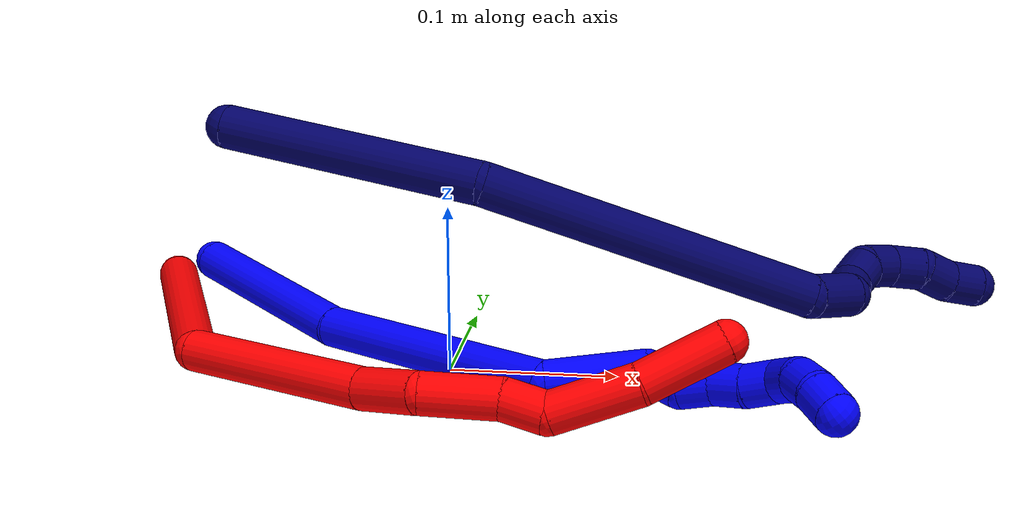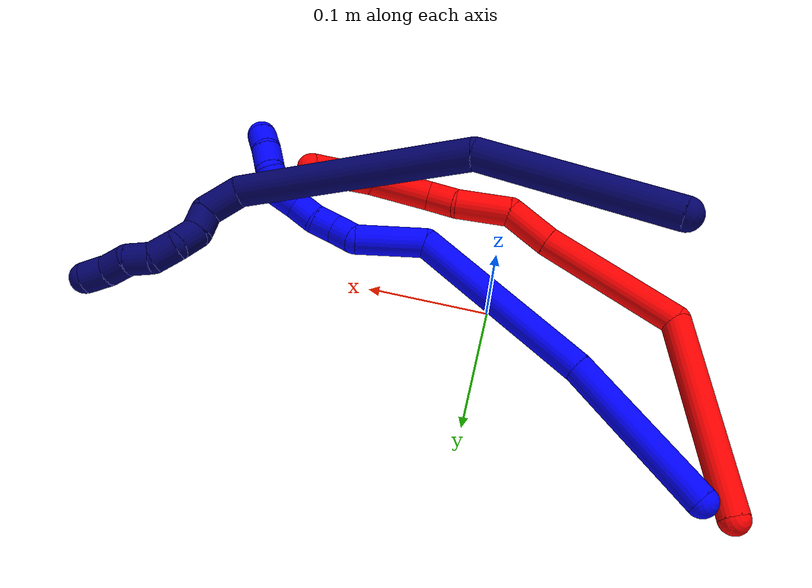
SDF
<sdf version="1.7">
 <world name="default">
  <model name="1">
   <static>0</static>
   <link name="1">
    <collision name="collision-cylinder-e_1_1_4">
     <pose>0.017856 -0.05655 -0.031979 2.08546 0.268232 0.454618</pose>
     <geometry><cylinder><radius>0.0125</radius><length>0.13475</length></cylinder></geometry>
     <surface>
      <friction><ode><mu>1.16</mu><mu2>1.16</mu2><slip1>0</slip1><slip2>0</slip2></ode></friction>
      <contact><ode><kp>1e+06</kp><kd>1</kd><max_vel>0</max_vel><min_depth>0.001</min_depth></ode></contact>
     </surface>
    </collision>
    <visual name="visual-cylinder-e_1_1_4">
     <pose>0.017856 -0.05655 -0.031979 2.08546 0.268232 0.454618</pose>
     <geometry><cylinder><radius>0.0125</radius><length>0.13475</length></cylinder></geometry>
     <material><ambient>0 0 1 1</ambient></material>
    </visual>
    <collision name="collision-cylinder-e_2_4_5">
     <pose>0.073114 -0.174433 -0.102809 2.13545 0.475695 0.82994</pose>
     <geometry><cylinder><radius>0.0125</radius><length>0.163341</length></cylinder></geometry>
     <surface>
      <friction><ode><mu>1.16</mu><mu2>1.16</mu2><slip1>0</slip1><slip2>0</slip2></ode></friction>
      <contact><ode><kp>1e+06</kp><kd>1</kd><max_vel>0</max_vel><min_depth>0.001</min_depth></ode></contact>
     </surface>
    </collision>
    <visual name="visual-cylinder-e_2_4_5">
     <pose>0.073114 -0.174433 -0.102809 2.13545 0.475695 0.82994</pose>
     <geometry><cylinder><radius>0.0125</radius><length>0.163341</length></cylinder></geometry>
     <material><ambient>0 0 1 1</ambient></material>
    </visual>
    <collision name="collision-cylinder-e_3_5_6">
     <pose>0.13516 -0.239554 -0.158117 2.91536 0.970055 2.71698</pose>
     <geometry><cylinder><radius>0.0125</radius><length>0.059751</length></cylinder></geometry>
     <surface>
      <friction><ode><mu>1.16</mu><mu2>1.16</mu2><slip1>0</slip1><slip2>0</slip2></ode></friction>
      <contact><ode><kp>1e+06</kp><kd>1</kd><max_vel>0</max_vel><min_depth>0.001</min_depth></ode></contact>
     </surface>
    </collision>
    <visual name="visual-cylinder-e_3_5_6">
     <pose>0.13516 -0.239554 -0.158117 2.91536 0.970055 2.71698</pose>
     <geometry><cylinder><radius>0.0125</radius><length>0.059751</length></cylinder></geometry>
     <material><ambient>0 0 1 1</ambient></material>
    </visual>
    <collision name="collision-cylinder-e_4_6_7">
     <pose>0.163376 -0.250177 -0.182399 2.42365 0.331082 0.837793</pose>
     <geometry><cylinder><radius>0.0125</radius><length>0.021972</length></cylinder></geometry>
     <surface>
      <friction><ode><mu>1.16</mu><mu2>1.16</mu2><slip1>0</slip1><slip2>0</slip2></ode></friction>
      <contact><ode><kp>1e+06</kp><kd>1</kd><max_vel>0</max_vel><min_depth>0.001</min_depth></ode></contact>
     </surface>
    </collision>
    <visual name="visual-cylinder-e_4_6_7">
     <pose>0.163376 -0.250177 -0.182399 2.42365 0.331082 0.837793</pose>
     <geometry><cylinder><radius>0.0125</radius><length>0.021972</length></cylinder></geometry>
     <material><ambient>0 0 1 1</ambient></material>
    </visual>
    <collision name="collision-cylinder-e_5_7_8">
     <pose>0.174623 -0.262072 -0.194185 2.23492 0.873708 1.52839</pose>
     <geometry><cylinder><radius>0.0125</radius><length>0.020023</length></cylinder></geometry>
     <surface>
      <friction><ode><mu>1.16</mu><mu2>1.16</mu2><slip1>0</slip1><slip2>0</slip2></ode></friction>
      <contact><ode><kp>1e+06</kp><kd>1</kd><max_vel>0</max_vel><min_depth>0.001</min_depth></ode></contact>
     </surface>
    </collision>
    <visual name="visual-cylinder-e_5_7_8">
     <pose>0.174623 -0.262072 -0.194185 2.23492 0.873708 1.52839</pose>
     <geometry><cylinder><radius>0.0125</radius><length>0.020023</length></cylinder></geometry>
     <material><ambient>0 0 1 1</ambient></material>
    </visual>
    <collision name="collision-cylinder-e_6_8_9">
     <pose>0.188172 -0.274199 -0.202269 2.09893 0.622681 1.02146</pose>
     <geometry><cylinder><radius>0.0125</radius><length>0.020141</length></cylinder></geometry>
     <surface>
      <friction><ode><mu>1.16</mu><mu2>1.16</mu2><slip1>0</slip1><slip2>0</slip2></ode></friction>
      <contact><ode><kp>1e+06</kp><kd>1</kd><max_vel>0</max_vel><min_depth>0.001</min_depth></ode></contact>
     </surface>
    </collision>
    <visual name="visual-cylinder-e_6_8_9">
     <pose>0.188172 -0.274199 -0.202269 2.09893 0.622681 1.02146</pose>
     <geometry><cylinder><radius>0.0125</radius><length>0.020141</length></cylinder></geometry>
     <material><ambient>0 0 1 1</ambient></material>
    </visual>
    <collision name="collision-cylinder-e_7_9_10">
     <pose>0.201448 -0.287356 -0.209251 2.00972 0.833036 1.21664</pose>
     <geometry><cylinder><radius>0.0125</radius><length>0.020008</length></cylinder></geometry>
     <surface>
      <friction><ode><mu>1.16</mu><mu2>1.16</mu2><slip1>0</slip1><slip2>0</slip2></ode></friction>
      <contact><ode><kp>1e+06</kp><kd>1</kd><max_vel>0</max_vel><min_depth>0.001</min_depth></ode></contact>
     </surface>
    </collision>
    <visual name="visual-cylinder-e_7_9_10">
     <pose>0.201448 -0.287356 -0.209251 2.00972 0.833036 1.21664</pose>
     <geometry><cylinder><radius>0.0125</radius><length>0.020008</length></cylinder></geometry>
     <material><ambient>0 0 1 1</ambient></material>
    </visual>
    <collision name="collision-cylinder-e_8_10_11">
     <pose>0.212036 -0.302907 -0.211479 1.50411 0.324139 0.303544</pose>
     <geometry><cylinder><radius>0.0125</radius><length>0.020005</length></cylinder></geometry>
     <surface>
      <friction><ode><mu>1.16</mu><mu2>1.16</mu2><slip1>0</slip1><slip2>0</slip2></ode></friction>
      <contact><ode><kp>1e+06</kp><kd>1</kd><max_vel>0</max_vel><min_depth>0.001</min_depth></ode></contact>
     </surface>
    </collision>
    <visual name="visual-cylinder-e_8_10_11">
     <pose>0.212036 -0.302907 -0.211479 1.50411 0.324139 0.303544</pose>
     <geometry><cylinder><radius>0.0125</radius><length>0.020005</length></cylinder></geometry>
     <material><ambient>0 0 1 1</ambient></material>
    </visual>
    <collision name="collision-cylinder-e_9_11_12">
     <pose>0.215313 -0.322177 -0.212798 1.76709 0.00915 0.011149</pose>
     <geometry><cylinder><radius>0.0125</radius><length>0.020005</length></cylinder></geometry>
     <surface>
      <friction><ode><mu>1.16</mu><mu2>1.16</mu2><slip1>0</slip1><slip2>0</slip2></ode></friction>
      <contact><ode><kp>1e+06</kp><kd>1</kd><max_vel>0</max_vel><min_depth>0.001</min_depth></ode></contact>
     </surface>
    </collision>
    <visual name="visual-cylinder-e_9_11_12">
     <pose>0.215313 -0.322177 -0.212798 1.76709 0.00915 0.011149</pose>
     <geometry><cylinder><radius>0.0125</radius><length>0.020005</length></cylinder></geometry>
     <material><ambient>0 0 1 1</ambient></material>
    </visual>
    <collision name="collision-cylinder-e_10_12_2">
     <pose>0.21461 -0.341018 -0.218977 2.00871 -0.079585 -0.125044</pose>
     <geometry><cylinder><radius>0.0125</radius><length>0.020006</length></cylinder></geometry>
     <surface>
      <friction><ode><mu>1.16</mu><mu2>1.16</mu2><slip1>0</slip1><slip2>0</slip2></ode></friction>
      <contact><ode><kp>1e+06</kp><kd>1</kd><max_vel>0</max_vel><min_depth>0.001</min_depth></ode></contact>
     </surface>
    </collision>
    <visual name="visual-cylinder-e_10_12_2">
     <pose>0.21461 -0.341018 -0.218977 2.00871 -0.079585 -0.125044</pose>
     <geometry><cylinder><radius>0.0125</radius><length>0.020006</length></cylinder></geometry>
     <material><ambient>0 0 1 1</ambient></material>
    </visual>
    <collision name="collision-sphere-2">
     <pose>0.213814 -0.350048 -0.223205 0 -0 0</pose>
     <geometry><sphere><radius>0.0125</radius></sphere></geometry>
     <surface>
      <friction><ode><mu>1.16</mu><mu2>1.16</mu2><slip1>0</slip1><slip2>0</slip2></ode></friction>
      <contact><ode><kp>1e+06</kp><kd>1</kd><max_vel>0</max_vel><min_depth>0.001</min_depth></ode></contact>
     </surface>
    </collision>
    <visual name="visual-sphere-2">
     <pose>0.213814 -0.350048 -0.223205 0 -0 0</pose>
     <geometry><sphere><radius>0.0125</radius></sphere></geometry>
     <material><ambient>0 0 1 1</ambient></material>
    </visual>
    <collision name="collision-sphere-12">
     <pose>0.215405 -0.331987 -0.214748 0 -0 0</pose>
     <geometry><sphere><radius>0.0125</radius></sphere></geometry>
     <surface>
      <friction><ode><mu>1.16</mu><mu2>1.16</mu2><slip1>0</slip1><slip2>0</slip2></ode></friction>
      <contact><ode><kp>1e+06</kp><kd>1</kd><max_vel>0</max_vel><min_depth>0.001</min_depth></ode></contact>
     </surface>
    </collision>
    <visual name="visual-sphere-12">
     <pose>0.215405 -0.331987 -0.214748 0 -0 0</pose>
     <geometry><sphere><radius>0.0125</radius></sphere></geometry>
     <material><ambient>0 0 1 1</ambient></material>
    </visual>
    <collision name="collision-sphere-11">
     <pose>0.215222 -0.312368 -0.210847 0 -0 0</pose>
     <geometry><sphere><radius>0.0125</radius></sphere></geometry>
     <surface>
      <friction><ode><mu>1.16</mu><mu2>1.16</mu2><slip1>0</slip1><slip2>0</slip2></ode></friction>
      <contact><ode><kp>1e+06</kp><kd>1</kd><max_vel>0</max_vel><min_depth>0.001</min_depth></ode></contact>
     </surface>
    </collision>
    <visual name="visual-sphere-11">
     <pose>0.215222 -0.312368 -0.210847 0 -0 0</pose>
     <geometry><sphere><radius>0.0125</radius></sphere></geometry>
     <material><ambient>0 0 1 1</ambient></material>
    </visual>
    <collision name="collision-sphere-10">
     <pose>0.20885 -0.293447 -0.212111 0 -0 0</pose>
     <geometry><sphere><radius>0.0125</radius></sphere></geometry>
     <surface>
      <friction><ode><mu>1.16</mu><mu2>1.16</mu2><slip1>0</slip1><slip2>0</slip2></ode></friction>
      <contact><ode><kp>1e+06</kp><kd>1</kd><max_vel>0</max_vel><min_depth>0.001</min_depth></ode></contact>
     </surface>
    </collision>
    <visual name="visual-sphere-10">
     <pose>0.20885 -0.293447 -0.212111 0 -0 0</pose>
     <geometry><sphere><radius>0.0125</radius></sphere></geometry>
     <material><ambient>0 0 1 1</ambient></material>
    </visual>
    <collision name="collision-sphere-9">
     <pose>0.194045 -0.281265 -0.206391 0 -0 0</pose>
     <geometry><sphere><radius>0.0125</radius></sphere></geometry>
     <surface>
      <friction><ode><mu>1.16</mu><mu2>1.16</mu2><slip1>0</slip1><slip2>0</slip2></ode></friction>
      <contact><ode><kp>1e+06</kp><kd>1</kd><max_vel>0</max_vel><min_depth>0.001</min_depth></ode></contact>
     </surface>
    </collision>
    <visual name="visual-sphere-9">
     <pose>0.194045 -0.281265 -0.206391 0 -0 0</pose>
     <geometry><sphere><radius>0.0125</radius></sphere></geometry>
     <material><ambient>0 0 1 1</ambient></material>
    </visual>
    <collision name="collision-sphere-4">
     <pose>0.035712 -0.1131 -0.063958 0 -0 0</pose>
     <geometry><sphere><radius>0.0125</radius></sphere></geometry>
     <surface>
      <friction><ode><mu>1.16</mu><mu2>1.16</mu2><slip1>0</slip1><slip2>0</slip2></ode></friction>
      <contact><ode><kp>1e+06</kp><kd>1</kd><max_vel>0</max_vel><min_depth>0.001</min_depth></ode></contact>
     </surface>
    </collision>
    <visual name="visual-sphere-4">
     <pose>0.035712 -0.1131 -0.063958 0 -0 0</pose>
     <geometry><sphere><radius>0.0125</radius></sphere></geometry>
     <material><ambient>0 0 1 1</ambient></material>
    </visual>
    <collision name="collision-sphere-1">
     <geometry><sphere><radius>0.0125</radius></sphere></geometry>
     <surface>
      <friction><ode><mu>1.16</mu><mu2>1.16</mu2><slip1>0</slip1><slip2>0</slip2></ode></friction>
      <contact><ode><kp>1e+06</kp><kd>1</kd><max_vel>0</max_vel><min_depth>0.001</min_depth></ode></contact>
     </surface>
    </collision>
    <visual name="visual-sphere-1">
     <geometry><sphere><radius>0.0125</radius></sphere></geometry>
     <material><ambient>0 0 1 1</ambient></material>
    </visual>
    <collision name="collision-sphere-8">
     <pose>0.182299 -0.267133 -0.198147 0 -0 0</pose>
     <geometry><sphere><radius>0.0125</radius></sphere></geometry>
     <surface>
      <friction><ode><mu>1.16</mu><mu2>1.16</mu2><slip1>0</slip1><slip2>0</slip2></ode></friction>
      <contact><ode><kp>1e+06</kp><kd>1</kd><max_vel>0</max_vel><min_depth>0.001</min_depth></ode></contact>
     </surface>
    </collision>
    <visual name="visual-sphere-8">
     <pose>0.182299 -0.267133 -0.198147 0 -0 0</pose>
     <geometry><sphere><radius>0.0125</radius></sphere></geometry>
     <material><ambient>0 0 1 1</ambient></material>
    </visual>
    <collision name="collision-sphere-5">
     <pose>0.110515 -0.235766 -0.141661 0 -0 0</pose>
     <geometry><sphere><radius>0.0125</radius></sphere></geometry>
     <surface>
      <friction><ode><mu>1.16</mu><mu2>1.16</mu2><slip1>0</slip1><slip2>0</slip2></ode></friction>
      <contact><ode><kp>1e+06</kp><kd>1</kd><max_vel>0</max_vel><min_depth>0.001</min_depth></ode></contact>
     </surface>
    </collision>
    <visual name="visual-sphere-5">
     <pose>0.110515 -0.235766 -0.141661 0 -0 0</pose>
     <geometry><sphere><radius>0.0125</radius></sphere></geometry>
     <material><ambient>0 0 1 1</ambient></material>
    </visual>
    <collision name="collision-sphere-6">
     <pose>0.159805 -0.243342 -0.174574 0 -0 0</pose>
     <geometry><sphere><radius>0.0125</radius></sphere></geometry>
     <surface>
      <friction><ode><mu>1.16</mu><mu2>1.16</mu2><slip1>0</slip1><slip2>0</slip2></ode></friction>
      <contact><ode><kp>1e+06</kp><kd>1</kd><max_vel>0</max_vel><min_depth>0.001</min_depth></ode></contact>
     </surface>
    </collision>
    <visual name="visual-sphere-6">
     <pose>0.159805 -0.243342 -0.174574 0 -0 0</pose>
     <geometry><sphere><radius>0.0125</radius></sphere></geometry>
     <material><ambient>0 0 1 1</ambient></material>
    </visual>
    <collision name="collision-sphere-7">
     <pose>0.166947 -0.257011 -0.190224 0 -0 0</pose>
     <geometry><sphere><radius>0.0125</radius></sphere></geometry>
     <surface>
      <friction><ode><mu>1.16</mu><mu2>1.16</mu2><slip1>0</slip1><slip2>0</slip2></ode></friction>
      <contact><ode><kp>1e+06</kp><kd>1</kd><max_vel>0</max_vel><min_depth>0.001</min_depth></ode></contact>
     </surface>
    </collision>
    <visual name="visual-sphere-7">
     <pose>0.166947 -0.257011 -0.190224 0 -0 0</pose>
     <geometry><sphere><radius>0.0125</radius></sphere></geometry>
     <material><ambient>0 0 1 1</ambient></material>
    </visual>
    <inertial>
     <pose>0.100347 -0.183538 -0.119149 0 -0 0</pose>
     <mass>0.5</mass>
     <inertia>
      <ixx>0.000756</ixx>
      <ixy>0</ixy>
      <ixz>0</ixz>
      <iyy>0.000233</iyy>
      <iyz>0</iyz>
      <izz>0.000201</izz>
     </inertia>
    </inertial>
   </link>
   <pose>-0.181035 0.122595 0.02462 -0.175952 -0.645982 0.440877</pose>
  </model>
  <model name="2">
   <static>0</static>
   <link name="2">
    <collision name="collision-cylinder-e_1_1_4">
     <pose>-0.015448 -0.078091 -0.00939 1.69047 -0.193933 -0.218465</pose>
     <geometry><cylinder><radius>0.0125</radius><length>0.160313</length></cylinder></geometry>
     <surface>
      <friction><ode><mu>1.16</mu><mu2>1.16</mu2><slip1>0</slip1><slip2>0</slip2></ode></friction>
      <contact><ode><kp>1e+06</kp><kd>1</kd><max_vel>0</max_vel><min_depth>0.001</min_depth></ode></contact>
     </surface>
    </collision>
    <visual name="visual-cylinder-e_1_1_4">
     <pose>-0.015448 -0.078091 -0.00939 1.69047 -0.193933 -0.218465</pose>
     <geometry><cylinder><radius>0.0125</radius><length>0.160313</length></cylinder></geometry>
     <material><ambient>1 0 0 1</ambient></material>
    </visual>
    <collision name="collision-cylinder-e_2_4_5">
     <pose>0.000147 -0.204041 -0.040626 1.99901 0.533081 0.803347</pose>
     <geometry><cylinder><radius>0.0125</radius><length>0.122167</length></cylinder></geometry>
     <surface>
      <friction><ode><mu>1.16</mu><mu2>1.16</mu2><slip1>0</slip1><slip2>0</slip2></ode></friction>
      <contact><ode><kp>1e+06</kp><kd>1</kd><max_vel>0</max_vel><min_depth>0.001</min_depth></ode></contact>
     </surface>
    </collision>
    <visual name="visual-cylinder-e_2_4_5">
     <pose>0.000147 -0.204041 -0.040626 1.99901 0.533081 0.803347</pose>
     <geometry><cylinder><radius>0.0125</radius><length>0.122167</length></cylinder></geometry>
     <material><ambient>1 0 0 1</ambient></material>
    </visual>
    <collision name="collision-cylinder-e_3_5_6">
     <pose>0.04147 -0.268663 -0.066607 1.81266 0.537029 0.675647</pose>
     <geometry><cylinder><radius>0.0125</radius><length>0.040193</length></cylinder></geometry>
     <surface>
      <friction><ode><mu>1.16</mu><mu2>1.16</mu2><slip1>0</slip1><slip2>0</slip2></ode></friction>
      <contact><ode><kp>1e+06</kp><kd>1</kd><max_vel>0</max_vel><min_depth>0.001</min_depth></ode></contact>
     </surface>
    </collision>
    <visual name="visual-cylinder-e_3_5_6">
     <pose>0.04147 -0.268663 -0.066607 1.81266 0.537029 0.675647</pose>
     <geometry><cylinder><radius>0.0125</radius><length>0.040193</length></cylinder></geometry>
     <material><ambient>1 0 0 1</ambient></material>
    </visual>
    <collision name="collision-cylinder-e_4_6_7">
     <pose>0.069839 -0.295875 -0.08074 2.33418 0.896418 1.68889</pose>
     <geometry><cylinder><radius>0.0125</radius><length>0.046314</length></cylinder></geometry>
     <surface>
      <friction><ode><mu>1.16</mu><mu2>1.16</mu2><slip1>0</slip1><slip2>0</slip2></ode></friction>
      <contact><ode><kp>1e+06</kp><kd>1</kd><max_vel>0</max_vel><min_depth>0.001</min_depth></ode></contact>
     </surface>
    </collision>
    <visual name="visual-cylinder-e_4_6_7">
     <pose>0.069839 -0.295875 -0.08074 2.33418 0.896418 1.68889</pose>
     <geometry><cylinder><radius>0.0125</radius><length>0.046314</length></cylinder></geometry>
     <material><ambient>1 0 0 1</ambient></material>
    </visual>
    <collision name="collision-cylinder-e_5_7_8">
     <pose>0.095507 -0.314374 -0.098064 2.30909 0.608229 1.23473</pose>
     <geometry><cylinder><radius>0.0125</radius><length>0.026531</length></cylinder></geometry>
     <surface>
      <friction><ode><mu>1.16</mu><mu2>1.16</mu2><slip1>0</slip1><slip2>0</slip2></ode></friction>
      <contact><ode><kp>1e+06</kp><kd>1</kd><max_vel>0</max_vel><min_depth>0.001</min_depth></ode></contact>
     </surface>
    </collision>
    <visual name="visual-cylinder-e_5_7_8">
     <pose>0.095507 -0.314374 -0.098064 2.30909 0.608229 1.23473</pose>
     <geometry><cylinder><radius>0.0125</radius><length>0.026531</length></cylinder></geometry>
     <material><ambient>1 0 0 1</ambient></material>
    </visual>
    <collision name="collision-cylinder-e_6_8_9">
     <pose>0.127082 -0.333381 -0.10751 1.7619 1.13553 1.31617</pose>
     <geometry><cylinder><radius>0.0125</radius><length>0.052926</length></cylinder></geometry>
     <surface>
      <friction><ode><mu>1.16</mu><mu2>1.16</mu2><slip1>0</slip1><slip2>0</slip2></ode></friction>
      <contact><ode><kp>1e+06</kp><kd>1</kd><max_vel>0</max_vel><min_depth>0.001</min_depth></ode></contact>
     </surface>
    </collision>
    <visual name="visual-cylinder-e_6_8_9">
     <pose>0.127082 -0.333381 -0.10751 1.7619 1.13553 1.31617</pose>
     <geometry><cylinder><radius>0.0125</radius><length>0.052926</length></cylinder></geometry>
     <material><ambient>1 0 0 1</ambient></material>
    </visual>
    <collision name="collision-cylinder-e_7_9_2">
     <pose>0.17588 -0.35132 -0.108874 1.46307 1.29482 1.19267</pose>
     <geometry><cylinder><radius>0.0125</radius><length>0.051555</length></cylinder></geometry>
     <surface>
      <friction><ode><mu>1.16</mu><mu2>1.16</mu2><slip1>0</slip1><slip2>0</slip2></ode></friction>
      <contact><ode><kp>1e+06</kp><kd>1</kd><max_vel>0</max_vel><min_depth>0.001</min_depth></ode></contact>
     </surface>
    </collision>
    <visual name="visual-cylinder-e_7_9_2">
     <pose>0.17588 -0.35132 -0.108874 1.46307 1.29482 1.19267</pose>
     <geometry><cylinder><radius>0.0125</radius><length>0.051555</length></cylinder></geometry>
     <material><ambient>1 0 0 1</ambient></material>
    </visual>
    <collision name="collision-sphere-2">
     <pose>0.200683 -0.358303 -0.108119 0 -0 0</pose>
     <geometry><sphere><radius>0.0125</radius></sphere></geometry>
     <surface>
      <friction><ode><mu>1.16</mu><mu2>1.16</mu2><slip1>0</slip1><slip2>0</slip2></ode></friction>
      <contact><ode><kp>1e+06</kp><kd>1</kd><max_vel>0</max_vel><min_depth>0.001</min_depth></ode></contact>
     </surface>
    </collision>
    <visual name="visual-sphere-2">
     <pose>0.200683 -0.358303 -0.108119 0 -0 0</pose>
     <geometry><sphere><radius>0.0125</radius></sphere></geometry>
     <material><ambient>1 0 0 1</ambient></material>
    </visual>
    <collision name="collision-sphere-9">
     <pose>0.151078 -0.344336 -0.109629 0 -0 0</pose>
     <geometry><sphere><radius>0.0125</radius></sphere></geometry>
     <surface>
      <friction><ode><mu>1.16</mu><mu2>1.16</mu2><slip1>0</slip1><slip2>0</slip2></ode></friction>
      <contact><ode><kp>1e+06</kp><kd>1</kd><max_vel>0</max_vel><min_depth>0.001</min_depth></ode></contact>
     </surface>
    </collision>
    <visual name="visual-sphere-9">
     <pose>0.151078 -0.344336 -0.109629 0 -0 0</pose>
     <geometry><sphere><radius>0.0125</radius></sphere></geometry>
     <material><ambient>1 0 0 1</ambient></material>
    </visual>
    <collision name="collision-sphere-4">
     <pose>-0.030895 -0.156183 -0.018781 0 -0 0</pose>
     <geometry><sphere><radius>0.0125</radius></sphere></geometry>
     <surface>
      <friction><ode><mu>1.16</mu><mu2>1.16</mu2><slip1>0</slip1><slip2>0</slip2></ode></friction>
      <contact><ode><kp>1e+06</kp><kd>1</kd><max_vel>0</max_vel><min_depth>0.001</min_depth></ode></contact>
     </surface>
    </collision>
    <visual name="visual-sphere-4">
     <pose>-0.030895 -0.156183 -0.018781 0 -0 0</pose>
     <geometry><sphere><radius>0.0125</radius></sphere></geometry>
     <material><ambient>1 0 0 1</ambient></material>
    </visual>
    <collision name="collision-sphere-1">
     <geometry><sphere><radius>0.0125</radius></sphere></geometry>
     <surface>
      <friction><ode><mu>1.16</mu><mu2>1.16</mu2><slip1>0</slip1><slip2>0</slip2></ode></friction>
      <contact><ode><kp>1e+06</kp><kd>1</kd><max_vel>0</max_vel><min_depth>0.001</min_depth></ode></contact>
     </surface>
    </collision>
    <visual name="visual-sphere-1">
     <geometry><sphere><radius>0.0125</radius></sphere></geometry>
     <material><ambient>1 0 0 1</ambient></material>
    </visual>
    <collision name="collision-sphere-8">
     <pose>0.103087 -0.322426 -0.105391 0 -0 0</pose>
     <geometry><sphere><radius>0.0125</radius></sphere></geometry>
     <surface>
      <friction><ode><mu>1.16</mu><mu2>1.16</mu2><slip1>0</slip1><slip2>0</slip2></ode></friction>
      <contact><ode><kp>1e+06</kp><kd>1</kd><max_vel>0</max_vel><min_depth>0.001</min_depth></ode></contact>
     </surface>
    </collision>
    <visual name="visual-sphere-8">
     <pose>0.103087 -0.322426 -0.105391 0 -0 0</pose>
     <geometry><sphere><radius>0.0125</radius></sphere></geometry>
     <material><ambient>1 0 0 1</ambient></material>
    </visual>
    <collision name="collision-sphere-5">
     <pose>0.031189 -0.251898 -0.062471 0 -0 0</pose>
     <geometry><sphere><radius>0.0125</radius></sphere></geometry>
     <surface>
      <friction><ode><mu>1.16</mu><mu2>1.16</mu2><slip1>0</slip1><slip2>0</slip2></ode></friction>
      <contact><ode><kp>1e+06</kp><kd>1</kd><max_vel>0</max_vel><min_depth>0.001</min_depth></ode></contact>
     </surface>
    </collision>
    <visual name="visual-sphere-5">
     <pose>0.031189 -0.251898 -0.062471 0 -0 0</pose>
     <geometry><sphere><radius>0.0125</radius></sphere></geometry>
     <material><ambient>1 0 0 1</ambient></material>
    </visual>
    <collision name="collision-sphere-6">
     <pose>0.051751 -0.285428 -0.070743 0 -0 0</pose>
     <geometry><sphere><radius>0.0125</radius></sphere></geometry>
     <surface>
      <friction><ode><mu>1.16</mu><mu2>1.16</mu2><slip1>0</slip1><slip2>0</slip2></ode></friction>
      <contact><ode><kp>1e+06</kp><kd>1</kd><max_vel>0</max_vel><min_depth>0.001</min_depth></ode></contact>
     </surface>
    </collision>
    <visual name="visual-sphere-6">
     <pose>0.051751 -0.285428 -0.070743 0 -0 0</pose>
     <geometry><sphere><radius>0.0125</radius></sphere></geometry>
     <material><ambient>1 0 0 1</ambient></material>
    </visual>
    <collision name="collision-sphere-7">
     <pose>0.087926 -0.306322 -0.090737 0 -0 0</pose>
     <geometry><sphere><radius>0.0125</radius></sphere></geometry>
     <surface>
      <friction><ode><mu>1.16</mu><mu2>1.16</mu2><slip1>0</slip1><slip2>0</slip2></ode></friction>
      <contact><ode><kp>1e+06</kp><kd>1</kd><max_vel>0</max_vel><min_depth>0.001</min_depth></ode></contact>
     </surface>
    </collision>
    <visual name="visual-sphere-7">
     <pose>0.087926 -0.306322 -0.090737 0 -0 0</pose>
     <geometry><sphere><radius>0.0125</radius></sphere></geometry>
     <material><ambient>1 0 0 1</ambient></material>
    </visual>
    <inertial>
     <pose>0.04154 -0.212091 -0.05358 0 -0 0</pose>
     <mass>0.5</mass>
     <inertia>
      <ixx>0.000496</ixx>
      <ixy>0</ixy>
      <ixz>0</ixz>
      <iyy>2.9e-05</iyy>
      <iyz>0</iyz>
      <izz>0.000425</izz>
     </inertia>
    </inertial>
   </link>
   <pose>-0.20831 0.12639 0.012426 -0.200738 -0.358597 0.587156</pose>
  </model>
  <model name="7">
   <static>0</static>
   <link name="7">
    <collision name="collision-cylinder-e_1_1_4">
     <pose>0.072828 -0.012091 0.021828 0.50584 1.2407 0.365187</pose>
     <geometry><cylinder><radius>0.0125</radius><length>0.153968</length></cylinder></geometry>
     <surface>
      <friction><ode><mu>1.16</mu><mu2>1.16</mu2><slip1>0</slip1><slip2>0</slip2></ode></friction>
      <contact><ode><kp>1e+06</kp><kd>1</kd><max_vel>0</max_vel><min_depth>0.001</min_depth></ode></contact>
     </surface>
    </collision>
    <visual name="visual-cylinder-e_1_1_4">
     <pose>0.072828 -0.012091 0.021828 0.50584 1.2407 0.365187</pose>
     <geometry><cylinder><radius>0.0125</radius><length>0.153968</length></cylinder></geometry>
     <material><ambient>0.003922 0 0.403922 1</ambient></material>
    </visual>
    <collision name="collision-cylinder-e_2_4_5">
     <pose>0.238264 -0.000495 0.062424 -0.900756 1.25536 -0.674824</pose>
     <geometry><cylinder><radius>0.0125</radius><length>0.194829</length></cylinder></geometry>
     <surface>
      <friction><ode><mu>1.16</mu><mu2>1.16</mu2><slip1>0</slip1><slip2>0</slip2></ode></friction>
      <contact><ode><kp>1e+06</kp><kd>1</kd><max_vel>0</max_vel><min_depth>0.001</min_depth></ode></contact>
     </surface>
    </collision>
    <visual name="visual-cylinder-e_2_4_5">
     <pose>0.238264 -0.000495 0.062424 -0.900756 1.25536 -0.674824</pose>
     <geometry><cylinder><radius>0.0125</radius><length>0.194829</length></cylinder></geometry>
     <material><ambient>0.003922 0 0.403922 1</ambient></material>
    </visual>
    <collision name="collision-cylinder-e_3_5_6">
     <pose>0.340095 0.033687 0.087357 -1.03967 0.648424 -0.380055</pose>
     <geometry><cylinder><radius>0.0125</radius><length>0.030543</length></cylinder></geometry>
     <surface>
      <friction><ode><mu>1.16</mu><mu2>1.16</mu2><slip1>0</slip1><slip2>0</slip2></ode></friction>
      <contact><ode><kp>1e+06</kp><kd>1</kd><max_vel>0</max_vel><min_depth>0.001</min_depth></ode></contact>
     </surface>
    </collision>
    <visual name="visual-cylinder-e_3_5_6">
     <pose>0.340095 0.033687 0.087357 -1.03967 0.648424 -0.380055</pose>
     <geometry><cylinder><radius>0.0125</radius><length>0.030543</length></cylinder></geometry>
     <material><ambient>0.003922 0 0.403922 1</ambient></material>
    </visual>
    <collision name="collision-cylinder-e_4_6_7">
     <pose>0.34861 0.053694 0.096621 -1.25582 -0.070591 0.051253</pose>
     <geometry><cylinder><radius>0.0125</radius><length>0.020056</length></cylinder></geometry>
     <surface>
      <friction><ode><mu>1.16</mu><mu2>1.16</mu2><slip1>0</slip1><slip2>0</slip2></ode></friction>
      <contact><ode><kp>1e+06</kp><kd>1</kd><max_vel>0</max_vel><min_depth>0.001</min_depth></ode></contact>
     </surface>
    </collision>
    <visual name="visual-cylinder-e_4_6_7">
     <pose>0.34861 0.053694 0.096621 -1.25582 -0.070591 0.051253</pose>
     <geometry><cylinder><radius>0.0125</radius><length>0.020056</length></cylinder></geometry>
     <material><ambient>0.003922 0 0.403922 1</ambient></material>
    </visual>
    <collision name="collision-cylinder-e_5_7_8">
     <pose>0.34922 0.070102 0.106858 -0.76821 0.131923 -0.053385</pose>
     <geometry><cylinder><radius>0.0125</radius><length>0.020025</length></cylinder></geometry>
     <surface>
      <friction><ode><mu>1.16</mu><mu2>1.16</mu2><slip1>0</slip1><slip2>0</slip2></ode></friction>
      <contact><ode><kp>1e+06</kp><kd>1</kd><max_vel>0</max_vel><min_depth>0.001</min_depth></ode></contact>
     </surface>
    </collision>
    <visual name="visual-cylinder-e_5_7_8">
     <pose>0.34922 0.070102 0.106858 -0.76821 0.131923 -0.053385</pose>
     <geometry><cylinder><radius>0.0125</radius><length>0.020025</length></cylinder></geometry>
     <material><ambient>0.003922 0 0.403922 1</ambient></material>
    </visual>
    <collision name="collision-cylinder-e_6_8_9">
     <pose>0.357035 0.083789 0.118155 -1.02127 0.684383 -0.393911</pose>
     <geometry><cylinder><radius>0.0125</radius><length>0.020555</length></cylinder></geometry>
     <surface>
      <friction><ode><mu>1.16</mu><mu2>1.16</mu2><slip1>0</slip1><slip2>0</slip2></ode></friction>
      <contact><ode><kp>1e+06</kp><kd>1</kd><max_vel>0</max_vel><min_depth>0.001</min_depth></ode></contact>
     </surface>
    </collision>
    <visual name="visual-cylinder-e_6_8_9">
     <pose>0.357035 0.083789 0.118155 -1.02127 0.684383 -0.393911</pose>
     <geometry><cylinder><radius>0.0125</radius><length>0.020555</length></cylinder></geometry>
     <material><ambient>0.003922 0 0.403922 1</ambient></material>
    </visual>
    <collision name="collision-cylinder-e_7_9_10">
     <pose>0.372323 0.093025 0.126427 -0.536387 1.07238 -0.323764</pose>
     <geometry><cylinder><radius>0.0125</radius><length>0.020017</length></cylinder></geometry>
     <surface>
      <friction><ode><mu>1.16</mu><mu2>1.16</mu2><slip1>0</slip1><slip2>0</slip2></ode></friction>
      <contact><ode><kp>1e+06</kp><kd>1</kd><max_vel>0</max_vel><min_depth>0.001</min_depth></ode></contact>
     </surface>
    </collision>
    <visual name="visual-cylinder-e_7_9_10">
     <pose>0.372323 0.093025 0.126427 -0.536387 1.07238 -0.323764</pose>
     <geometry><cylinder><radius>0.0125</radius><length>0.020017</length></cylinder></geometry>
     <material><ambient>0.003922 0 0.403922 1</ambient></material>
    </visual>
    <collision name="collision-cylinder-e_8_10_11">
     <pose>0.389601 0.100661 0.131568 -1.37511 1.01327 -0.855243</pose>
     <geometry><cylinder><radius>0.0125</radius><length>0.020001</length></cylinder></geometry>
     <surface>
      <friction><ode><mu>1.16</mu><mu2>1.16</mu2><slip1>0</slip1><slip2>0</slip2></ode></friction>
      <contact><ode><kp>1e+06</kp><kd>1</kd><max_vel>0</max_vel><min_depth>0.001</min_depth></ode></contact>
     </surface>
    </collision>
    <visual name="visual-cylinder-e_8_10_11">
     <pose>0.389601 0.100661 0.131568 -1.37511 1.01327 -0.855243</pose>
     <geometry><cylinder><radius>0.0125</radius><length>0.020001</length></cylinder></geometry>
     <material><ambient>0.003922 0 0.403922 1</ambient></material>
    </visual>
    <collision name="collision-cylinder-e_9_11_2">
     <pose>0.406381 0.110365 0.135894 -0.939977 0.977808 -0.527835</pose>
     <geometry><cylinder><radius>0.0125</radius><length>0.020004</length></cylinder></geometry>
     <surface>
      <friction><ode><mu>1.16</mu><mu2>1.16</mu2><slip1>0</slip1><slip2>0</slip2></ode></friction>
      <contact><ode><kp>1e+06</kp><kd>1</kd><max_vel>0</max_vel><min_depth>0.001</min_depth></ode></contact>
     </surface>
    </collision>
    <visual name="visual-cylinder-e_9_11_2">
     <pose>0.406381 0.110365 0.135894 -0.939977 0.977808 -0.527835</pose>
     <geometry><cylinder><radius>0.0125</radius><length>0.020004</length></cylinder></geometry>
     <material><ambient>0.003922 0 0.403922 1</ambient></material>
    </visual>
    <collision name="collision-sphere-2">
     <pose>0.414676 0.114878 0.139191 0 -0 0</pose>
     <geometry><sphere><radius>0.0125</radius></sphere></geometry>
     <surface>
      <friction><ode><mu>1.16</mu><mu2>1.16</mu2><slip1>0</slip1><slip2>0</slip2></ode></friction>
      <contact><ode><kp>1e+06</kp><kd>1</kd><max_vel>0</max_vel><min_depth>0.001</min_depth></ode></contact>
     </surface>
    </collision>
    <visual name="visual-sphere-2">
     <pose>0.414676 0.114878 0.139191 0 -0 0</pose>
     <geometry><sphere><radius>0.0125</radius></sphere></geometry>
     <material><ambient>0.003922 0 0.403922 1</ambient></material>
    </visual>
    <collision name="collision-sphere-11">
     <pose>0.398087 0.105851 0.132597 0 -0 0</pose>
     <geometry><sphere><radius>0.0125</radius></sphere></geometry>
     <surface>
      <friction><ode><mu>1.16</mu><mu2>1.16</mu2><slip1>0</slip1><slip2>0</slip2></ode></friction>
      <contact><ode><kp>1e+06</kp><kd>1</kd><max_vel>0</max_vel><min_depth>0.001</min_depth></ode></contact>
     </surface>
    </collision>
    <visual name="visual-sphere-11">
     <pose>0.398087 0.105851 0.132597 0 -0 0</pose>
     <geometry><sphere><radius>0.0125</radius></sphere></geometry>
     <material><ambient>0.003922 0 0.403922 1</ambient></material>
    </visual>
    <collision name="collision-sphere-10">
     <pose>0.381114 0.09547 0.130539 0 -0 0</pose>
     <geometry><sphere><radius>0.0125</radius></sphere></geometry>
     <surface>
      <friction><ode><mu>1.16</mu><mu2>1.16</mu2><slip1>0</slip1><slip2>0</slip2></ode></friction>
      <contact><ode><kp>1e+06</kp><kd>1</kd><max_vel>0</max_vel><min_depth>0.001</min_depth></ode></contact>
     </surface>
    </collision>
    <visual name="visual-sphere-10">
     <pose>0.381114 0.09547 0.130539 0 -0 0</pose>
     <geometry><sphere><radius>0.0125</radius></sphere></geometry>
     <material><ambient>0.003922 0 0.403922 1</ambient></material>
    </visual>
    <collision name="collision-sphere-9">
     <pose>0.363532 0.09058 0.122314 0 -0 0</pose>
     <geometry><sphere><radius>0.0125</radius></sphere></geometry>
     <surface>
      <friction><ode><mu>1.16</mu><mu2>1.16</mu2><slip1>0</slip1><slip2>0</slip2></ode></friction>
      <contact><ode><kp>1e+06</kp><kd>1</kd><max_vel>0</max_vel><min_depth>0.001</min_depth></ode></contact>
     </surface>
    </collision>
    <visual name="visual-sphere-9">
     <pose>0.363532 0.09058 0.122314 0 -0 0</pose>
     <geometry><sphere><radius>0.0125</radius></sphere></geometry>
     <material><ambient>0.003922 0 0.403922 1</ambient></material>
    </visual>
    <collision name="collision-sphere-4">
     <pose>0.145656 -0.024182 0.043656 0 -0 0</pose>
     <geometry><sphere><radius>0.0125</radius></sphere></geometry>
     <surface>
      <friction><ode><mu>1.16</mu><mu2>1.16</mu2><slip1>0</slip1><slip2>0</slip2></ode></friction>
      <contact><ode><kp>1e+06</kp><kd>1</kd><max_vel>0</max_vel><min_depth>0.001</min_depth></ode></contact>
     </surface>
    </collision>
    <visual name="visual-sphere-4">
     <pose>0.145656 -0.024182 0.043656 0 -0 0</pose>
     <geometry><sphere><radius>0.0125</radius></sphere></geometry>
     <material><ambient>0.003922 0 0.403922 1</ambient></material>
    </visual>
    <collision name="collision-sphere-1">
     <geometry><sphere><radius>0.0125</radius></sphere></geometry>
     <surface>
      <friction><ode><mu>1.16</mu><mu2>1.16</mu2><slip1>0</slip1><slip2>0</slip2></ode></friction>
      <contact><ode><kp>1e+06</kp><kd>1</kd><max_vel>0</max_vel><min_depth>0.001</min_depth></ode></contact>
     </surface>
    </collision>
    <visual name="visual-sphere-1">
     <geometry><sphere><radius>0.0125</radius></sphere></geometry>
     <material><ambient>0.003922 0 0.403922 1</ambient></material>
    </visual>
    <collision name="collision-sphere-8">
     <pose>0.350537 0.076999 0.113996 0 -0 0</pose>
     <geometry><sphere><radius>0.0125</radius></sphere></geometry>
     <surface>
      <friction><ode><mu>1.16</mu><mu2>1.16</mu2><slip1>0</slip1><slip2>0</slip2></ode></friction>
      <contact><ode><kp>1e+06</kp><kd>1</kd><max_vel>0</max_vel><min_depth>0.001</min_depth></ode></contact>
     </surface>
    </collision>
    <visual name="visual-sphere-8">
     <pose>0.350537 0.076999 0.113996 0 -0 0</pose>
     <geometry><sphere><radius>0.0125</radius></sphere></geometry>
     <material><ambient>0.003922 0 0.403922 1</ambient></material>
    </visual>
    <collision name="collision-sphere-5">
     <pose>0.330872 0.023192 0.081192 0 -0 0</pose>
     <geometry><sphere><radius>0.0125</radius></sphere></geometry>
     <surface>
      <friction><ode><mu>1.16</mu><mu2>1.16</mu2><slip1>0</slip1><slip2>0</slip2></ode></friction>
      <contact><ode><kp>1e+06</kp><kd>1</kd><max_vel>0</max_vel><min_depth>0.001</min_depth></ode></contact>
     </surface>
    </collision>
    <visual name="visual-sphere-5">
     <pose>0.330872 0.023192 0.081192 0 -0 0</pose>
     <geometry><sphere><radius>0.0125</radius></sphere></geometry>
     <material><ambient>0.003922 0 0.403922 1</ambient></material>
    </visual>
    <collision name="collision-sphere-6">
     <pose>0.349318 0.044183 0.093522 0 -0 0</pose>
     <geometry><sphere><radius>0.0125</radius></sphere></geometry>
     <surface>
      <friction><ode><mu>1.16</mu><mu2>1.16</mu2><slip1>0</slip1><slip2>0</slip2></ode></friction>
      <contact><ode><kp>1e+06</kp><kd>1</kd><max_vel>0</max_vel><min_depth>0.001</min_depth></ode></contact>
     </surface>
    </collision>
    <visual name="visual-sphere-6">
     <pose>0.349318 0.044183 0.093522 0 -0 0</pose>
     <geometry><sphere><radius>0.0125</radius></sphere></geometry>
     <material><ambient>0.003922 0 0.403922 1</ambient></material>
    </visual>
    <collision name="collision-sphere-7">
     <pose>0.347903 0.063205 0.09972 0 -0 0</pose>
     <geometry><sphere><radius>0.0125</radius></sphere></geometry>
     <surface>
      <friction><ode><mu>1.16</mu><mu2>1.16</mu2><slip1>0</slip1><slip2>0</slip2></ode></friction>
      <contact><ode><kp>1e+06</kp><kd>1</kd><max_vel>0</max_vel><min_depth>0.001</min_depth></ode></contact>
     </surface>
    </collision>
    <visual name="visual-sphere-7">
     <pose>0.347903 0.063205 0.09972 0 -0 0</pose>
     <geometry><sphere><radius>0.0125</radius></sphere></geometry>
     <material><ambient>0.003922 0 0.403922 1</ambient></material>
    </visual>
    <inertial>
     <pose>0.22544 0.018714 0.065156 0 -0 0</pose>
     <mass>0.5</mass>
     <inertia>
      <ixx>0.000198</ixx>
      <ixy>0</ixy>
      <ixz>0</ixz>
      <iyy>0.000827</iyy>
      <iyz>0</iyz>
      <izz>-0.000993</izz>
     </inertia>
    </inertial>
   </link>
   <pose>-0.119573 -0.031118 0.151963 -0.372289 0.462915 -0.152994</pose>
  </model>
 </world>
</sdf>
